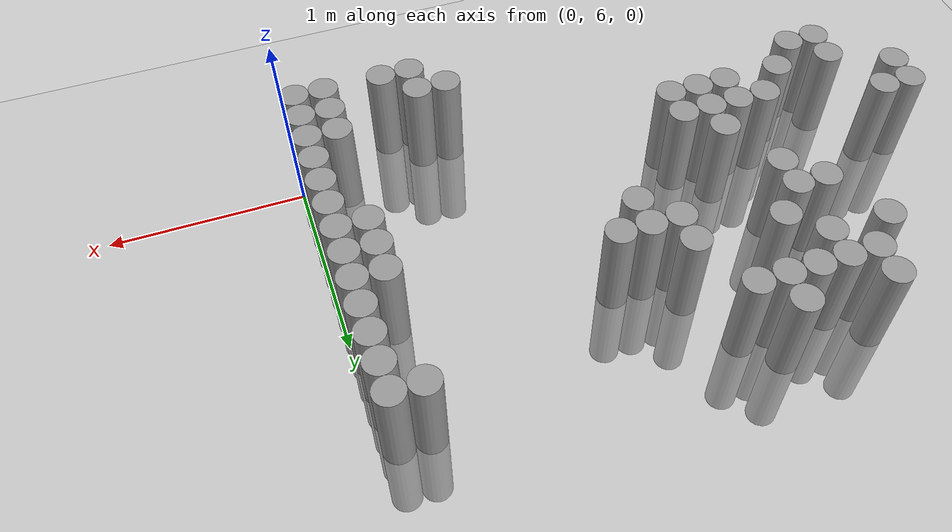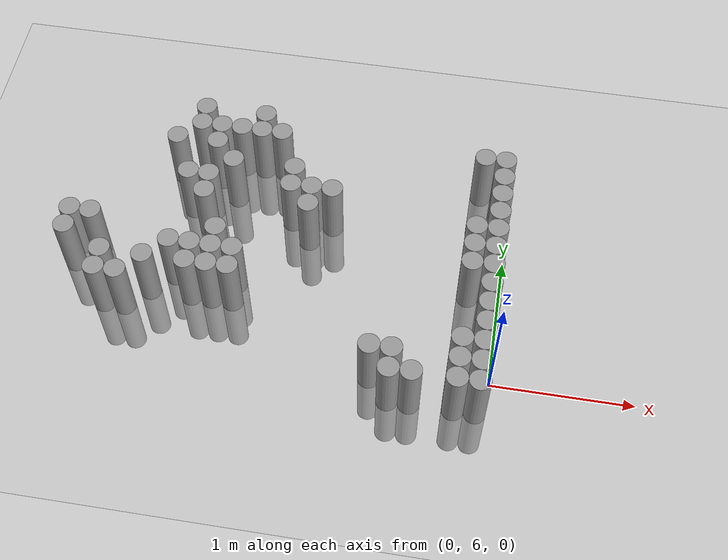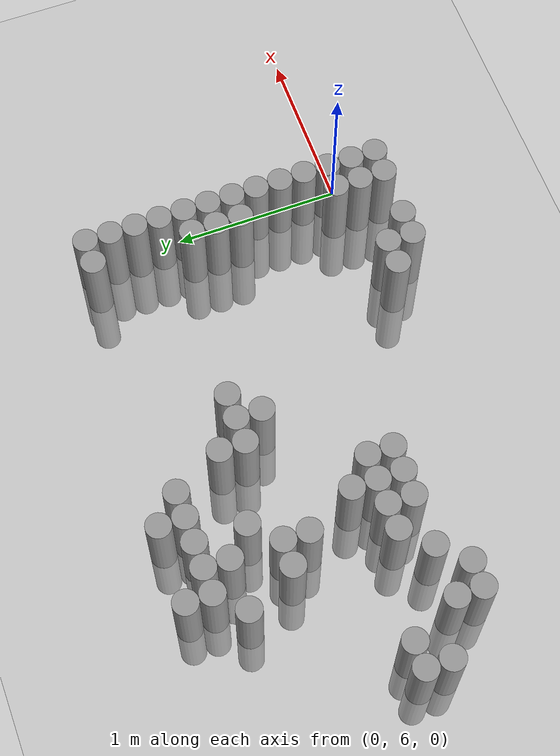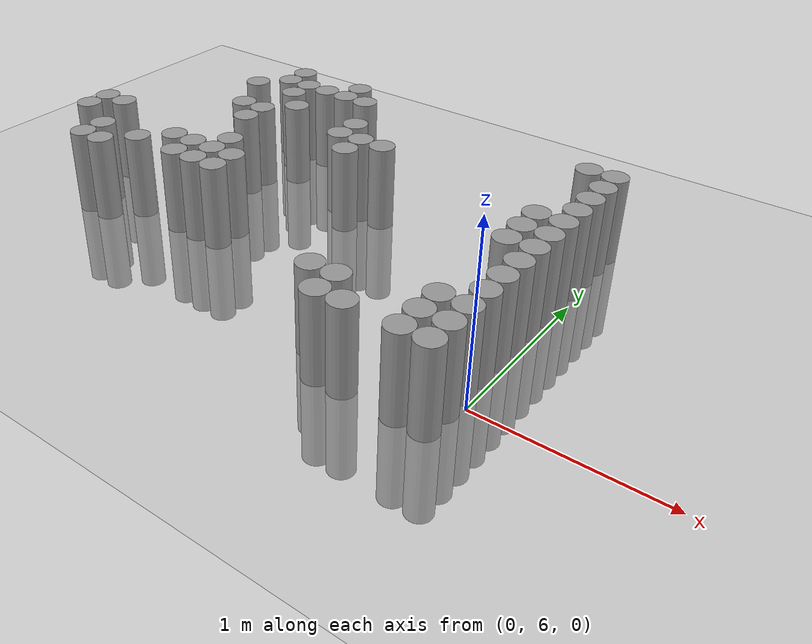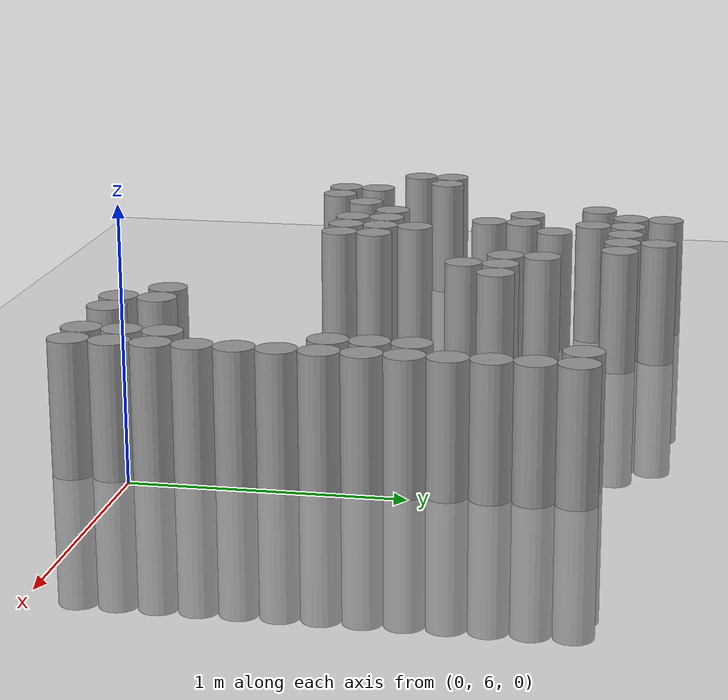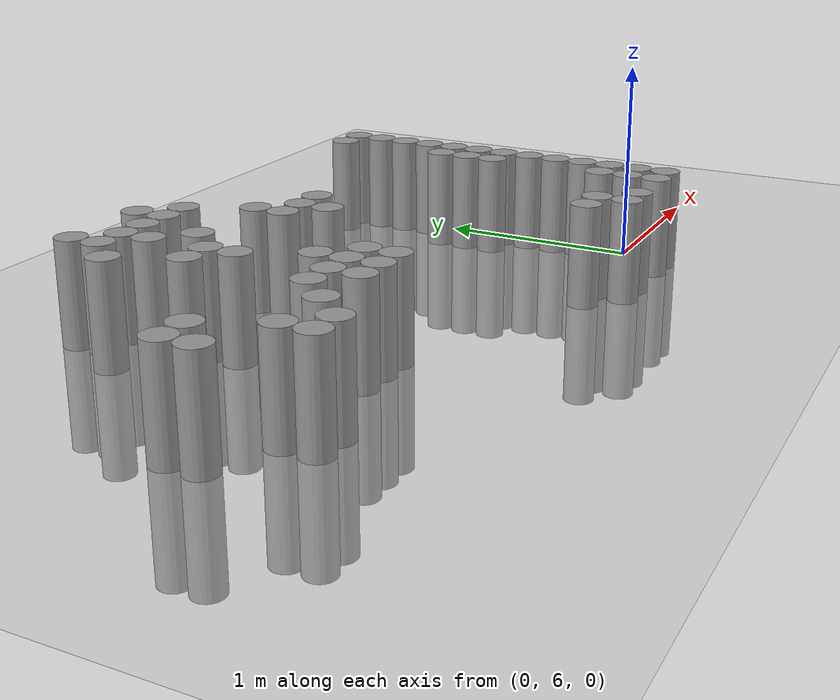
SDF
<sdf version="1.6">
 <world name="default">
  <model name="ground_plane">
   <static>1</static>
   <static>1</static>
   <link name="link">
    <collision name="collision">
     <geometry><plane><normal>0 0 1</normal><size>100 100</size></plane></geometry>
     <surface><friction><ode><mu>100</mu><mu2>50</mu2></ode></friction></surface>
    </collision>
    <visual name="visual">
     <cast_shadows>0</cast_shadows>
     <geometry><plane><normal>0 0 1</normal><size>100 100</size></plane></geometry>
     <material>
      <script><uri>file://media/materials/scripts/gazebo.material</uri><name>Gazebo/Grey</name></script>
     </material>
    </visual>
   </link>
  </model>
  <model name="unit_cylinder_169">
   <static>1</static>
   <pose>-3.075000 6.525000 0.000000 0.000000 0.000000 0.000000</pose>
   <link name="link">
    <inertial>
     <mass>1</mass>
     <inertia><ixx>0.145833</ixx><ixy>0</ixy><ixz>0</ixz><iyy>0.145833</iyy><iyz>0</iyz><izz>0.125</izz></inertia>
    </inertial>
    <collision name="collision">
     <geometry><cylinder><radius>0.075000</radius><length>1</length></cylinder></geometry>
    </collision>
    <visual name="visual">
     <geometry><cylinder><radius>0.075000</radius><length>1</length></cylinder></geometry>
     <material>
      <script><name>Gazebo/Grey</name><uri>file://media/materials/scripts/gazebo.material</uri></script>
     </material>
    </visual>
   </link>
  </model>
  <model name="unit_cylinder_170">
   <static>1</static>
   <pose>-3.075000 6.675000 0.000000 0.000000 0.000000 0.000000</pose>
   <link name="link">
    <inertial>
     <mass>1</mass>
     <inertia><ixx>0.145833</ixx><ixy>0</ixy><ixz>0</ixz><iyy>0.145833</iyy><iyz>0</iyz><izz>0.125</izz></inertia>
    </inertial>
    <collision name="collision">
     <geometry><cylinder><radius>0.075000</radius><length>1</length></cylinder></geometry>
    </collision>
    <visual name="visual">
     <geometry><cylinder><radius>0.075000</radius><length>1</length></cylinder></geometry>
     <material>
      <script><name>Gazebo/Grey</name><uri>file://media/materials/scripts/gazebo.material</uri></script>
     </material>
    </visual>
   </link>
  </model>
  <model name="unit_cylinder_171">
   <static>1</static>
   <pose>-2.925000 6.675000 0.000000 0.000000 0.000000 0.000000</pose>
   <link name="link">
    <inertial>
     <mass>1</mass>
     <inertia><ixx>0.145833</ixx><ixy>0</ixy><ixz>0</ixz><iyy>0.145833</iyy><iyz>0</iyz><izz>0.125</izz></inertia>
    </inertial>
    <collision name="collision">
     <geometry><cylinder><radius>0.075000</radius><length>1</length></cylinder></geometry>
    </collision>
    <visual name="visual">
     <geometry><cylinder><radius>0.075000</radius><length>1</length></cylinder></geometry>
     <material>
      <script><name>Gazebo/Grey</name><uri>file://media/materials/scripts/gazebo.material</uri></script>
     </material>
    </visual>
   </link>
  </model>
  <model name="unit_cylinder_173">
   <static>1</static>
   <pose>-2.775000 6.225000 0.000000 0.000000 0.000000 0.000000</pose>
   <link name="link">
    <inertial>
     <mass>1</mass>
     <inertia><ixx>0.145833</ixx><ixy>0</ixy><ixz>0</ixz><iyy>0.145833</iyy><iyz>0</iyz><izz>0.125</izz></inertia>
    </inertial>
    <collision name="collision">
     <geometry><cylinder><radius>0.075000</radius><length>1</length></cylinder></geometry>
    </collision>
    <visual name="visual">
     <geometry><cylinder><radius>0.075000</radius><length>1</length></cylinder></geometry>
     <material>
      <script><name>Gazebo/Grey</name><uri>file://media/materials/scripts/gazebo.material</uri></script>
     </material>
    </visual>
   </link>
  </model>
  <model name="unit_cylinder_174">
   <static>1</static>
   <pose>-2.775000 6.375000 0.000000 0.000000 0.000000 0.000000</pose>
   <link name="link">
    <inertial>
     <mass>1</mass>
     <inertia><ixx>0.145833</ixx><ixy>0</ixy><ixz>0</ixz><iyy>0.145833</iyy><iyz>0</iyz><izz>0.125</izz></inertia>
    </inertial>
    <collision name="collision">
     <geometry><cylinder><radius>0.075000</radius><length>1</length></cylinder></geometry>
    </collision>
    <visual name="visual">
     <geometry><cylinder><radius>0.075000</radius><length>1</length></cylinder></geometry>
     <material>
      <script><name>Gazebo/Grey</name><uri>file://media/materials/scripts/gazebo.material</uri></script>
     </material>
    </visual>
   </link>
  </model>
  <model name="unit_cylinder_179">
   <static>1</static>
   <pose>-2.625000 6.225000 0.000000 0.000000 0.000000 0.000000</pose>
   <link name="link">
    <inertial>
     <mass>1</mass>
     <inertia><ixx>0.145833</ixx><ixy>0</ixy><ixz>0</ixz><iyy>0.145833</iyy><iyz>0</iyz><izz>0.125</izz></inertia>
    </inertial>
    <collision name="collision">
     <geometry><cylinder><radius>0.075000</radius><length>1</length></cylinder></geometry>
    </collision>
    <visual name="visual">
     <geometry><cylinder><radius>0.075000</radius><length>1</length></cylinder></geometry>
     <material>
      <script><name>Gazebo/Grey</name><uri>file://media/materials/scripts/gazebo.material</uri></script>
     </material>
    </visual>
   </link>
  </model>
  <model name="unit_cylinder_183">
   <static>1</static>
   <pose>-2.475000 6.375000 0.000000 0.000000 0.000000 0.000000</pose>
   <link name="link">
    <inertial>
     <mass>1</mass>
     <inertia><ixx>0.145833</ixx><ixy>0</ixy><ixz>0</ixz><iyy>0.145833</iyy><iyz>0</iyz><izz>0.125</izz></inertia>
    </inertial>
    <collision name="collision">
     <geometry><cylinder><radius>0.075000</radius><length>1</length></cylinder></geometry>
    </collision>
    <visual name="visual">
     <geometry><cylinder><radius>0.075000</radius><length>1</length></cylinder></geometry>
     <material>
      <script><name>Gazebo/Grey</name><uri>file://media/materials/scripts/gazebo.material</uri></script>
     </material>
    </visual>
   </link>
  </model>
  <model name="unit_cylinder_184">
   <static>1</static>
   <pose>-2.475000 7.425000 0.000000 0.000000 0.000000 0.000000</pose>
   <link name="link">
    <inertial>
     <mass>1</mass>
     <inertia><ixx>0.145833</ixx><ixy>0</ixy><ixz>0</ixz><iyy>0.145833</iyy><iyz>0</iyz><izz>0.125</izz></inertia>
    </inertial>
    <collision name="collision">
     <geometry><cylinder><radius>0.075000</radius><length>1</length></cylinder></geometry>
    </collision>
    <visual name="visual">
     <geometry><cylinder><radius>0.075000</radius><length>1</length></cylinder></geometry>
     <material>
      <script><name>Gazebo/Grey</name><uri>file://media/materials/scripts/gazebo.material</uri></script>
     </material>
    </visual>
   </link>
  </model>
  <model name="unit_cylinder_189">
   <static>1</static>
   <pose>-2.325000 6.525000 0.000000 0.000000 0.000000 0.000000</pose>
   <link name="link">
    <inertial>
     <mass>1</mass>
     <inertia><ixx>0.145833</ixx><ixy>0</ixy><ixz>0</ixz><iyy>0.145833</iyy><iyz>0</iyz><izz>0.125</izz></inertia>
    </inertial>
    <collision name="collision">
     <geometry><cylinder><radius>0.075000</radius><length>1</length></cylinder></geometry>
    </collision>
    <visual name="visual">
     <geometry><cylinder><radius>0.075000</radius><length>1</length></cylinder></geometry>
     <material>
      <script><name>Gazebo/Grey</name><uri>file://media/materials/scripts/gazebo.material</uri></script>
     </material>
    </visual>
   </link>
  </model>
  <model name="unit_cylinder_190">
   <static>1</static>
   <pose>-2.325000 7.125000 0.000000 0.000000 0.000000 0.000000</pose>
   <link name="link">
    <inertial>
     <mass>1</mass>
     <inertia><ixx>0.145833</ixx><ixy>0</ixy><ixz>0</ixz><iyy>0.145833</iyy><iyz>0</iyz><izz>0.125</izz></inertia>
    </inertial>
    <collision name="collision">
     <geometry><cylinder><radius>0.075000</radius><length>1</length></cylinder></geometry>
    </collision>
    <visual name="visual">
     <geometry><cylinder><radius>0.075000</radius><length>1</length></cylinder></geometry>
     <material>
      <script><name>Gazebo/Grey</name><uri>file://media/materials/scripts/gazebo.material</uri></script>
     </material>
    </visual>
   </link>
  </model>
  <model name="unit_cylinder_191">
   <static>1</static>
   <pose>-2.325000 7.575000 0.000000 0.000000 0.000000 0.000000</pose>
   <link name="link">
    <inertial>
     <mass>1</mass>
     <inertia><ixx>0.145833</ixx><ixy>0</ixy><ixz>0</ixz><iyy>0.145833</iyy><iyz>0</iyz><izz>0.125</izz></inertia>
    </inertial>
    <collision name="collision">
     <geometry><cylinder><radius>0.075000</radius><length>1</length></cylinder></geometry>
    </collision>
    <visual name="visual">
     <geometry><cylinder><radius>0.075000</radius><length>1</length></cylinder></geometry>
     <material>
      <script><name>Gazebo/Grey</name><uri>file://media/materials/scripts/gazebo.material</uri></script>
     </material>
    </visual>
   </link>
  </model>
  <model name="unit_cylinder_192">
   <static>1</static>
   <pose>-2.325000 7.725000 0.000000 0.000000 0.000000 0.000000</pose>
   <link name="link">
    <inertial>
     <mass>1</mass>
     <inertia><ixx>0.145833</ixx><ixy>0</ixy><ixz>0</ixz><iyy>0.145833</iyy><iyz>0</iyz><izz>0.125</izz></inertia>
    </inertial>
    <collision name="collision">
     <geometry><cylinder><radius>0.075000</radius><length>1</length></cylinder></geometry>
    </collision>
    <visual name="visual">
     <geometry><cylinder><radius>0.075000</radius><length>1</length></cylinder></geometry>
     <material>
      <script><name>Gazebo/Grey</name><uri>file://media/materials/scripts/gazebo.material</uri></script>
     </material>
    </visual>
   </link>
  </model>
  <model name="unit_cylinder_196">
   <static>1</static>
   <pose>-2.175000 6.375000 0.000000 0.000000 0.000000 0.000000</pose>
   <link name="link">
    <inertial>
     <mass>1</mass>
     <inertia><ixx>0.145833</ixx><ixy>0</ixy><ixz>0</ixz><iyy>0.145833</iyy><iyz>0</iyz><izz>0.125</izz></inertia>
    </inertial>
    <collision name="collision">
     <geometry><cylinder><radius>0.075000</radius><length>1</length></cylinder></geometry>
    </collision>
    <visual name="visual">
     <geometry><cylinder><radius>0.075000</radius><length>1</length></cylinder></geometry>
     <material>
      <script><name>Gazebo/Grey</name><uri>file://media/materials/scripts/gazebo.material</uri></script>
     </material>
    </visual>
   </link>
  </model>
  <model name="unit_cylinder_197">
   <static>1</static>
   <pose>-2.175000 6.525000 0.000000 0.000000 0.000000 0.000000</pose>
   <link name="link">
    <inertial>
     <mass>1</mass>
     <inertia><ixx>0.145833</ixx><ixy>0</ixy><ixz>0</ixz><iyy>0.145833</iyy><iyz>0</iyz><izz>0.125</izz></inertia>
    </inertial>
    <collision name="collision">
     <geometry><cylinder><radius>0.075000</radius><length>1</length></cylinder></geometry>
    </collision>
    <visual name="visual">
     <geometry><cylinder><radius>0.075000</radius><length>1</length></cylinder></geometry>
     <material>
      <script><name>Gazebo/Grey</name><uri>file://media/materials/scripts/gazebo.material</uri></script>
     </material>
    </visual>
   </link>
  </model>
  <model name="unit_cylinder_198">
   <static>1</static>
   <pose>-2.175000 6.975000 0.000000 0.000000 0.000000 0.000000</pose>
   <link name="link">
    <inertial>
     <mass>1</mass>
     <inertia><ixx>0.145833</ixx><ixy>0</ixy><ixz>0</ixz><iyy>0.145833</iyy><iyz>0</iyz><izz>0.125</izz></inertia>
    </inertial>
    <collision name="collision">
     <geometry><cylinder><radius>0.075000</radius><length>1</length></cylinder></geometry>
    </collision>
    <visual name="visual">
     <geometry><cylinder><radius>0.075000</radius><length>1</length></cylinder></geometry>
     <material>
      <script><name>Gazebo/Grey</name><uri>file://media/materials/scripts/gazebo.material</uri></script>
     </material>
    </visual>
   </link>
  </model>
  <model name="unit_cylinder_199">
   <static>1</static>
   <pose>-2.175000 7.125000 0.000000 0.000000 0.000000 0.000000</pose>
   <link name="link">
    <inertial>
     <mass>1</mass>
     <inertia><ixx>0.145833</ixx><ixy>0</ixy><ixz>0</ixz><iyy>0.145833</iyy><iyz>0</iyz><izz>0.125</izz></inertia>
    </inertial>
    <collision name="collision">
     <geometry><cylinder><radius>0.075000</radius><length>1</length></cylinder></geometry>
    </collision>
    <visual name="visual">
     <geometry><cylinder><radius>0.075000</radius><length>1</length></cylinder></geometry>
     <material>
      <script><name>Gazebo/Grey</name><uri>file://media/materials/scripts/gazebo.material</uri></script>
     </material>
    </visual>
   </link>
  </model>
  <model name="unit_cylinder_200">
   <static>1</static>
   <pose>-2.175000 7.425000 0.000000 0.000000 0.000000 0.000000</pose>
   <link name="link">
    <inertial>
     <mass>1</mass>
     <inertia><ixx>0.145833</ixx><ixy>0</ixy><ixz>0</ixz><iyy>0.145833</iyy><iyz>0</iyz><izz>0.125</izz></inertia>
    </inertial>
    <collision name="collision">
     <geometry><cylinder><radius>0.075000</radius><length>1</length></cylinder></geometry>
    </collision>
    <visual name="visual">
     <geometry><cylinder><radius>0.075000</radius><length>1</length></cylinder></geometry>
     <material>
      <script><name>Gazebo/Grey</name><uri>file://media/materials/scripts/gazebo.material</uri></script>
     </material>
    </visual>
   </link>
  </model>
  <model name="unit_cylinder_201">
   <static>1</static>
   <pose>-2.175000 7.575000 0.000000 0.000000 0.000000 0.000000</pose>
   <link name="link">
    <inertial>
     <mass>1</mass>
     <inertia><ixx>0.145833</ixx><ixy>0</ixy><ixz>0</ixz><iyy>0.145833</iyy><iyz>0</iyz><izz>0.125</izz></inertia>
    </inertial>
    <collision name="collision">
     <geometry><cylinder><radius>0.075000</radius><length>1</length></cylinder></geometry>
    </collision>
    <visual name="visual">
     <geometry><cylinder><radius>0.075000</radius><length>1</length></cylinder></geometry>
     <material>
      <script><name>Gazebo/Grey</name><uri>file://media/materials/scripts/gazebo.material</uri></script>
     </material>
    </visual>
   </link>
  </model>
  <model name="unit_cylinder_203">
   <static>1</static>
   <pose>-2.025000 6.375000 0.000000 0.000000 0.000000 0.000000</pose>
   <link name="link">
    <inertial>
     <mass>1</mass>
     <inertia><ixx>0.145833</ixx><ixy>0</ixy><ixz>0</ixz><iyy>0.145833</iyy><iyz>0</iyz><izz>0.125</izz></inertia>
    </inertial>
    <collision name="collision">
     <geometry><cylinder><radius>0.075000</radius><length>1</length></cylinder></geometry>
    </collision>
    <visual name="visual">
     <geometry><cylinder><radius>0.075000</radius><length>1</length></cylinder></geometry>
     <material>
      <script><name>Gazebo/Grey</name><uri>file://media/materials/scripts/gazebo.material</uri></script>
     </material>
    </visual>
   </link>
  </model>
  <model name="unit_cylinder_204">
   <static>1</static>
   <pose>-2.025000 6.525000 0.000000 0.000000 0.000000 0.000000</pose>
   <link name="link">
    <inertial>
     <mass>1</mass>
     <inertia><ixx>0.145833</ixx><ixy>0</ixy><ixz>0</ixz><iyy>0.145833</iyy><iyz>0</iyz><izz>0.125</izz></inertia>
    </inertial>
    <collision name="collision">
     <geometry><cylinder><radius>0.075000</radius><length>1</length></cylinder></geometry>
    </collision>
    <visual name="visual">
     <geometry><cylinder><radius>0.075000</radius><length>1</length></cylinder></geometry>
     <material>
      <script><name>Gazebo/Grey</name><uri>file://media/materials/scripts/gazebo.material</uri></script>
     </material>
    </visual>
   </link>
  </model>
  <model name="unit_cylinder_205">
   <static>1</static>
   <pose>-2.025000 6.675000 0.000000 0.000000 0.000000 0.000000</pose>
   <link name="link">
    <inertial>
     <mass>1</mass>
     <inertia><ixx>0.145833</ixx><ixy>0</ixy><ixz>0</ixz><iyy>0.145833</iyy><iyz>0</iyz><izz>0.125</izz></inertia>
    </inertial>
    <collision name="collision">
     <geometry><cylinder><radius>0.075000</radius><length>1</length></cylinder></geometry>
    </collision>
    <visual name="visual">
     <geometry><cylinder><radius>0.075000</radius><length>1</length></cylinder></geometry>
     <material>
      <script><name>Gazebo/Grey</name><uri>file://media/materials/scripts/gazebo.material</uri></script>
     </material>
    </visual>
   </link>
  </model>
  <model name="unit_cylinder_206">
   <static>1</static>
   <pose>-2.025000 7.275000 0.000000 0.000000 0.000000 0.000000</pose>
   <link name="link">
    <inertial>
     <mass>1</mass>
     <inertia><ixx>0.145833</ixx><ixy>0</ixy><ixz>0</ixz><iyy>0.145833</iyy><iyz>0</iyz><izz>0.125</izz></inertia>
    </inertial>
    <collision name="collision">
     <geometry><cylinder><radius>0.075000</radius><length>1</length></cylinder></geometry>
    </collision>
    <visual name="visual">
     <geometry><cylinder><radius>0.075000</radius><length>1</length></cylinder></geometry>
     <material>
      <script><name>Gazebo/Grey</name><uri>file://media/materials/scripts/gazebo.material</uri></script>
     </material>
    </visual>
   </link>
  </model>
  <model name="unit_cylinder_207">
   <static>1</static>
   <pose>-2.025000 7.575000 0.000000 0.000000 0.000000 0.000000</pose>
   <link name="link">
    <inertial>
     <mass>1</mass>
     <inertia><ixx>0.145833</ixx><ixy>0</ixy><ixz>0</ixz><iyy>0.145833</iyy><iyz>0</iyz><izz>0.125</izz></inertia>
    </inertial>
    <collision name="collision">
     <geometry><cylinder><radius>0.075000</radius><length>1</length></cylinder></geometry>
    </collision>
    <visual name="visual">
     <geometry><cylinder><radius>0.075000</radius><length>1</length></cylinder></geometry>
     <material>
      <script><name>Gazebo/Grey</name><uri>file://media/materials/scripts/gazebo.material</uri></script>
     </material>
    </visual>
   </link>
  </model>
  <model name="unit_cylinder_209">
   <static>1</static>
   <pose>-1.875000 6.375000 0.000000 0.000000 0.000000 0.000000</pose>
   <link name="link">
    <inertial>
     <mass>1</mass>
     <inertia><ixx>0.145833</ixx><ixy>0</ixy><ixz>0</ixz><iyy>0.145833</iyy><iyz>0</iyz><izz>0.125</izz></inertia>
    </inertial>
    <collision name="collision">
     <geometry><cylinder><radius>0.075000</radius><length>1</length></cylinder></geometry>
    </collision>
    <visual name="visual">
     <geometry><cylinder><radius>0.075000</radius><length>1</length></cylinder></geometry>
     <material>
      <script><name>Gazebo/Grey</name><uri>file://media/materials/scripts/gazebo.material</uri></script>
     </material>
    </visual>
   </link>
  </model>
  <model name="unit_cylinder_210">
   <static>1</static>
   <pose>-1.875000 6.525000 0.000000 0.000000 0.000000 0.000000</pose>
   <link name="link">
    <inertial>
     <mass>1</mass>
     <inertia><ixx>0.145833</ixx><ixy>0</ixy><ixz>0</ixz><iyy>0.145833</iyy><iyz>0</iyz><izz>0.125</izz></inertia>
    </inertial>
    <collision name="collision">
     <geometry><cylinder><radius>0.075000</radius><length>1</length></cylinder></geometry>
    </collision>
    <visual name="visual">
     <geometry><cylinder><radius>0.075000</radius><length>1</length></cylinder></geometry>
     <material>
      <script><name>Gazebo/Grey</name><uri>file://media/materials/scripts/gazebo.material</uri></script>
     </material>
    </visual>
   </link>
  </model>
  <model name="unit_cylinder_211">
   <static>1</static>
   <pose>-1.875000 7.575000 0.000000 0.000000 0.000000 0.000000</pose>
   <link name="link">
    <inertial>
     <mass>1</mass>
     <inertia><ixx>0.145833</ixx><ixy>0</ixy><ixz>0</ixz><iyy>0.145833</iyy><iyz>0</iyz><izz>0.125</izz></inertia>
    </inertial>
    <collision name="collision">
     <geometry><cylinder><radius>0.075000</radius><length>1</length></cylinder></geometry>
    </collision>
    <visual name="visual">
     <geometry><cylinder><radius>0.075000</radius><length>1</length></cylinder></geometry>
     <material>
      <script><name>Gazebo/Grey</name><uri>file://media/materials/scripts/gazebo.material</uri></script>
     </material>
    </visual>
   </link>
  </model>
  <model name="unit_cylinder_212">
   <static>1</static>
   <pose>-1.875000 7.725000 0.000000 0.000000 0.000000 0.000000</pose>
   <link name="link">
    <inertial>
     <mass>1</mass>
     <inertia><ixx>0.145833</ixx><ixy>0</ixy><ixz>0</ixz><iyy>0.145833</iyy><iyz>0</iyz><izz>0.125</izz></inertia>
    </inertial>
    <collision name="collision">
     <geometry><cylinder><radius>0.075000</radius><length>1</length></cylinder></geometry>
    </collision>
    <visual name="visual">
     <geometry><cylinder><radius>0.075000</radius><length>1</length></cylinder></geometry>
     <material>
      <script><name>Gazebo/Grey</name><uri>file://media/materials/scripts/gazebo.material</uri></script>
     </material>
    </visual>
   </link>
  </model>
  <model name="unit_cylinder_217">
   <static>1</static>
   <pose>-1.725000 7.575000 0.000000 0.000000 0.000000 0.000000</pose>
   <link name="link">
    <inertial>
     <mass>1</mass>
     <inertia><ixx>0.145833</ixx><ixy>0</ixy><ixz>0</ixz><iyy>0.145833</iyy><iyz>0</iyz><izz>0.125</izz></inertia>
    </inertial>
    <collision name="collision">
     <geometry><cylinder><radius>0.075000</radius><length>1</length></cylinder></geometry>
    </collision>
    <visual name="visual">
     <geometry><cylinder><radius>0.075000</radius><length>1</length></cylinder></geometry>
     <material>
      <script><name>Gazebo/Grey</name><uri>file://media/materials/scripts/gazebo.material</uri></script>
     </material>
    </visual>
   </link>
  </model>
  <model name="unit_cylinder_223">
   <static>1</static>
   <pose>-1.575000 7.125000 0.000000 0.000000 0.000000 0.000000</pose>
   <link name="link">
    <inertial>
     <mass>1</mass>
     <inertia><ixx>0.145833</ixx><ixy>0</ixy><ixz>0</ixz><iyy>0.145833</iyy><iyz>0</iyz><izz>0.125</izz></inertia>
    </inertial>
    <collision name="collision">
     <geometry><cylinder><radius>0.075000</radius><length>1</length></cylinder></geometry>
    </collision>
    <visual name="visual">
     <geometry><cylinder><radius>0.075000</radius><length>1</length></cylinder></geometry>
     <material>
      <script><name>Gazebo/Grey</name><uri>file://media/materials/scripts/gazebo.material</uri></script>
     </material>
    </visual>
   </link>
  </model>
  <model name="unit_cylinder_224">
   <static>1</static>
   <pose>-1.575000 7.275000 0.000000 0.000000 0.000000 0.000000</pose>
   <link name="link">
    <inertial>
     <mass>1</mass>
     <inertia><ixx>0.145833</ixx><ixy>0</ixy><ixz>0</ixz><iyy>0.145833</iyy><iyz>0</iyz><izz>0.125</izz></inertia>
    </inertial>
    <collision name="collision">
     <geometry><cylinder><radius>0.075000</radius><length>1</length></cylinder></geometry>
    </collision>
    <visual name="visual">
     <geometry><cylinder><radius>0.075000</radius><length>1</length></cylinder></geometry>
     <material>
      <script><name>Gazebo/Grey</name><uri>file://media/materials/scripts/gazebo.material</uri></script>
     </material>
    </visual>
   </link>
  </model>
  <model name="unit_cylinder_227">
   <static>1</static>
   <pose>-1.425000 6.975000 0.000000 0.000000 0.000000 0.000000</pose>
   <link name="link">
    <inertial>
     <mass>1</mass>
     <inertia><ixx>0.145833</ixx><ixy>0</ixy><ixz>0</ixz><iyy>0.145833</iyy><iyz>0</iyz><izz>0.125</izz></inertia>
    </inertial>
    <collision name="collision">
     <geometry><cylinder><radius>0.075000</radius><length>1</length></cylinder></geometry>
    </collision>
    <visual name="visual">
     <geometry><cylinder><radius>0.075000</radius><length>1</length></cylinder></geometry>
     <material>
      <script><name>Gazebo/Grey</name><uri>file://media/materials/scripts/gazebo.material</uri></script>
     </material>
    </visual>
   </link>
  </model>
  <model name="unit_cylinder_228">
   <static>1</static>
   <pose>-1.425000 7.125000 0.000000 0.000000 0.000000 0.000000</pose>
   <link name="link">
    <inertial>
     <mass>1</mass>
     <inertia><ixx>0.145833</ixx><ixy>0</ixy><ixz>0</ixz><iyy>0.145833</iyy><iyz>0</iyz><izz>0.125</izz></inertia>
    </inertial>
    <collision name="collision">
     <geometry><cylinder><radius>0.075000</radius><length>1</length></cylinder></geometry>
    </collision>
    <visual name="visual">
     <geometry><cylinder><radius>0.075000</radius><length>1</length></cylinder></geometry>
     <material>
      <script><name>Gazebo/Grey</name><uri>file://media/materials/scripts/gazebo.material</uri></script>
     </material>
    </visual>
   </link>
  </model>
  <model name="unit_cylinder_230">
   <static>1</static>
   <pose>-1.275000 7.125000 0.000000 0.000000 0.000000 0.000000</pose>
   <link name="link">
    <inertial>
     <mass>1</mass>
     <inertia><ixx>0.145833</ixx><ixy>0</ixy><ixz>0</ixz><iyy>0.145833</iyy><iyz>0</iyz><izz>0.125</izz></inertia>
    </inertial>
    <collision name="collision">
     <geometry><cylinder><radius>0.075000</radius><length>1</length></cylinder></geometry>
    </collision>
    <visual name="visual">
     <geometry><cylinder><radius>0.075000</radius><length>1</length></cylinder></geometry>
     <material>
      <script><name>Gazebo/Grey</name><uri>file://media/materials/scripts/gazebo.material</uri></script>
     </material>
    </visual>
   </link>
  </model>
  <model name="unit_cylinder_231">
   <static>1</static>
   <pose>-0.825000 5.925000 0.000000 0.000000 0.000000 0.000000</pose>
   <link name="link">
    <inertial>
     <mass>1</mass>
     <inertia><ixx>0.145833</ixx><ixy>0</ixy><ixz>0</ixz><iyy>0.145833</iyy><iyz>0</iyz><izz>0.125</izz></inertia>
    </inertial>
    <collision name="collision">
     <geometry><cylinder><radius>0.075000</radius><length>1</length></cylinder></geometry>
    </collision>
    <visual name="visual">
     <geometry><cylinder><radius>0.075000</radius><length>1</length></cylinder></geometry>
     <material>
      <script><name>Gazebo/Grey</name><uri>file://media/materials/scripts/gazebo.material</uri></script>
     </material>
    </visual>
   </link>
  </model>
  <model name="unit_cylinder_233">
   <static>1</static>
   <pose>-0.675000 5.775000 0.000000 0.000000 0.000000 0.000000</pose>
   <link name="link">
    <inertial>
     <mass>1</mass>
     <inertia><ixx>0.145833</ixx><ixy>0</ixy><ixz>0</ixz><iyy>0.145833</iyy><iyz>0</iyz><izz>0.125</izz></inertia>
    </inertial>
    <collision name="collision">
     <geometry><cylinder><radius>0.075000</radius><length>1</length></cylinder></geometry>
    </collision>
    <visual name="visual">
     <geometry><cylinder><radius>0.075000</radius><length>1</length></cylinder></geometry>
     <material>
      <script><name>Gazebo/Grey</name><uri>file://media/materials/scripts/gazebo.material</uri></script>
     </material>
    </visual>
   </link>
  </model>
  <model name="unit_cylinder_234">
   <static>1</static>
   <pose>-0.675000 5.925000 0.000000 0.000000 0.000000 0.000000</pose>
   <link name="link">
    <inertial>
     <mass>1</mass>
     <inertia><ixx>0.145833</ixx><ixy>0</ixy><ixz>0</ixz><iyy>0.145833</iyy><iyz>0</iyz><izz>0.125</izz></inertia>
    </inertial>
    <collision name="collision">
     <geometry><cylinder><radius>0.075000</radius><length>1</length></cylinder></geometry>
    </collision>
    <visual name="visual">
     <geometry><cylinder><radius>0.075000</radius><length>1</length></cylinder></geometry>
     <material>
      <script><name>Gazebo/Grey</name><uri>file://media/materials/scripts/gazebo.material</uri></script>
     </material>
    </visual>
   </link>
  </model>
  <model name="unit_cylinder_236">
   <static>1</static>
   <pose>-0.525000 5.775000 0.000000 0.000000 0.000000 0.000000</pose>
   <link name="link">
    <inertial>
     <mass>1</mass>
     <inertia><ixx>0.145833</ixx><ixy>0</ixy><ixz>0</ixz><iyy>0.145833</iyy><iyz>0</iyz><izz>0.125</izz></inertia>
    </inertial>
    <collision name="collision">
     <geometry><cylinder><radius>0.075000</radius><length>1</length></cylinder></geometry>
    </collision>
    <visual name="visual">
     <geometry><cylinder><radius>0.075000</radius><length>1</length></cylinder></geometry>
     <material>
      <script><name>Gazebo/Grey</name><uri>file://media/materials/scripts/gazebo.material</uri></script>
     </material>
    </visual>
   </link>
  </model>
  <model name="unit_cylinder_242">
   <static>1</static>
   <pose>-0.225000 5.775000 0.000000 0.000000 0.000000 0.000000</pose>
   <link name="link">
    <inertial>
     <mass>1</mass>
     <inertia><ixx>0.145833</ixx><ixy>0</ixy><ixz>0</ixz><iyy>0.145833</iyy><iyz>0</iyz><izz>0.125</izz></inertia>
    </inertial>
    <collision name="collision">
     <geometry><cylinder><radius>0.075000</radius><length>1</length></cylinder></geometry>
    </collision>
    <visual name="visual">
     <geometry><cylinder><radius>0.075000</radius><length>1</length></cylinder></geometry>
     <material>
      <script><name>Gazebo/Grey</name><uri>file://media/materials/scripts/gazebo.material</uri></script>
     </material>
    </visual>
   </link>
  </model>
  <model name="unit_cylinder_243">
   <static>1</static>
   <pose>-0.225000 5.925000 0.000000 0.000000 0.000000 0.000000</pose>
   <link name="link">
    <inertial>
     <mass>1</mass>
     <inertia><ixx>0.145833</ixx><ixy>0</ixy><ixz>0</ixz><iyy>0.145833</iyy><iyz>0</iyz><izz>0.125</izz></inertia>
    </inertial>
    <collision name="collision">
     <geometry><cylinder><radius>0.075000</radius><length>1</length></cylinder></geometry>
    </collision>
    <visual name="visual">
     <geometry><cylinder><radius>0.075000</radius><length>1</length></cylinder></geometry>
     <material>
      <script><name>Gazebo/Grey</name><uri>file://media/materials/scripts/gazebo.material</uri></script>
     </material>
    </visual>
   </link>
  </model>
  <model name="unit_cylinder_244">
   <static>1</static>
   <pose>-0.225000 6.075000 0.000000 0.000000 0.000000 0.000000</pose>
   <link name="link">
    <inertial>
     <mass>1</mass>
     <inertia><ixx>0.145833</ixx><ixy>0</ixy><ixz>0</ixz><iyy>0.145833</iyy><iyz>0</iyz><izz>0.125</izz></inertia>
    </inertial>
    <collision name="collision">
     <geometry><cylinder><radius>0.075000</radius><length>1</length></cylinder></geometry>
    </collision>
    <visual name="visual">
     <geometry><cylinder><radius>0.075000</radius><length>1</length></cylinder></geometry>
     <material>
      <script><name>Gazebo/Grey</name><uri>file://media/materials/scripts/gazebo.material</uri></script>
     </material>
    </visual>
   </link>
  </model>
  <model name="unit_cylinder_245">
   <static>1</static>
   <pose>-0.225000 6.675000 0.000000 0.000000 0.000000 0.000000</pose>
   <link name="link">
    <inertial>
     <mass>1</mass>
     <inertia><ixx>0.145833</ixx><ixy>0</ixy><ixz>0</ixz><iyy>0.145833</iyy><iyz>0</iyz><izz>0.125</izz></inertia>
    </inertial>
    <collision name="collision">
     <geometry><cylinder><radius>0.075000</radius><length>1</length></cylinder></geometry>
    </collision>
    <visual name="visual">
     <geometry><cylinder><radius>0.075000</radius><length>1</length></cylinder></geometry>
     <material>
      <script><name>Gazebo/Grey</name><uri>file://media/materials/scripts/gazebo.material</uri></script>
     </material>
    </visual>
   </link>
  </model>
  <model name="unit_cylinder_246">
   <static>1</static>
   <pose>-0.225000 6.825000 0.000000 0.000000 0.000000 0.000000</pose>
   <link name="link">
    <inertial>
     <mass>1</mass>
     <inertia><ixx>0.145833</ixx><ixy>0</ixy><ixz>0</ixz><iyy>0.145833</iyy><iyz>0</iyz><izz>0.125</izz></inertia>
    </inertial>
    <collision name="collision">
     <geometry><cylinder><radius>0.075000</radius><length>1</length></cylinder></geometry>
    </collision>
    <visual name="visual">
     <geometry><cylinder><radius>0.075000</radius><length>1</length></cylinder></geometry>
     <material>
      <script><name>Gazebo/Grey</name><uri>file://media/materials/scripts/gazebo.material</uri></script>
     </material>
    </visual>
   </link>
  </model>
  <model name="unit_cylinder_247">
   <static>1</static>
   <pose>-0.225000 6.975000 0.000000 0.000000 0.000000 0.000000</pose>
   <link name="link">
    <inertial>
     <mass>1</mass>
     <inertia><ixx>0.145833</ixx><ixy>0</ixy><ixz>0</ixz><iyy>0.145833</iyy><iyz>0</iyz><izz>0.125</izz></inertia>
    </inertial>
    <collision name="collision">
     <geometry><cylinder><radius>0.075000</radius><length>1</length></cylinder></geometry>
    </collision>
    <visual name="visual">
     <geometry><cylinder><radius>0.075000</radius><length>1</length></cylinder></geometry>
     <material>
      <script><name>Gazebo/Grey</name><uri>file://media/materials/scripts/gazebo.material</uri></script>
     </material>
    </visual>
   </link>
  </model>
  <model name="unit_cylinder_248">
   <static>1</static>
   <pose>-0.225000 7.575000 0.000000 0.000000 0.000000 0.000000</pose>
   <link name="link">
    <inertial>
     <mass>1</mass>
     <inertia><ixx>0.145833</ixx><ixy>0</ixy><ixz>0</ixz><iyy>0.145833</iyy><iyz>0</iyz><izz>0.125</izz></inertia>
    </inertial>
    <collision name="collision">
     <geometry><cylinder><radius>0.075000</radius><length>1</length></cylinder></geometry>
    </collision>
    <visual name="visual">
     <geometry><cylinder><radius>0.075000</radius><length>1</length></cylinder></geometry>
     <material>
      <script><name>Gazebo/Grey</name><uri>file://media/materials/scripts/gazebo.material</uri></script>
     </material>
    </visual>
   </link>
  </model>
  <model name="unit_cylinder_261">
   <static>1</static>
   <pose>-0.075000 5.775000 0.000000 0.000000 0.000000 0.000000</pose>
   <link name="link">
    <inertial>
     <mass>1</mass>
     <inertia><ixx>0.145833</ixx><ixy>0</ixy><ixz>0</ixz><iyy>0.145833</iyy><iyz>0</iyz><izz>0.125</izz></inertia>
    </inertial>
    <collision name="collision">
     <geometry><cylinder><radius>0.075000</radius><length>1</length></cylinder></geometry>
    </collision>
    <visual name="visual">
     <geometry><cylinder><radius>0.075000</radius><length>1</length></cylinder></geometry>
     <material>
      <script><name>Gazebo/Grey</name><uri>file://media/materials/scripts/gazebo.material</uri></script>
     </material>
    </visual>
   </link>
  </model>
  <model name="unit_cylinder_262">
   <static>1</static>
   <pose>-0.075000 5.925000 0.000000 0.000000 0.000000 0.000000</pose>
   <link name="link">
    <inertial>
     <mass>1</mass>
     <inertia><ixx>0.145833</ixx><ixy>0</ixy><ixz>0</ixz><iyy>0.145833</iyy><iyz>0</iyz><izz>0.125</izz></inertia>
    </inertial>
    <collision name="collision">
     <geometry><cylinder><radius>0.075000</radius><length>1</length></cylinder></geometry>
    </collision>
    <visual name="visual">
     <geometry><cylinder><radius>0.075000</radius><length>1</length></cylinder></geometry>
     <material>
      <script><name>Gazebo/Grey</name><uri>file://media/materials/scripts/gazebo.material</uri></script>
     </material>
    </visual>
   </link>
  </model>
  <model name="unit_cylinder_263">
   <static>1</static>
   <pose>-0.075000 6.075000 0.000000 0.000000 0.000000 0.000000</pose>
   <link name="link">
    <inertial>
     <mass>1</mass>
     <inertia><ixx>0.145833</ixx><ixy>0</ixy><ixz>0</ixz><iyy>0.145833</iyy><iyz>0</iyz><izz>0.125</izz></inertia>
    </inertial>
    <collision name="collision">
     <geometry><cylinder><radius>0.075000</radius><length>1</length></cylinder></geometry>
    </collision>
    <visual name="visual">
     <geometry><cylinder><radius>0.075000</radius><length>1</length></cylinder></geometry>
     <material>
      <script><name>Gazebo/Grey</name><uri>file://media/materials/scripts/gazebo.material</uri></script>
     </material>
    </visual>
   </link>
  </model>
  <model name="unit_cylinder_264">
   <static>1</static>
   <pose>-0.075000 6.225000 0.000000 0.000000 0.000000 0.000000</pose>
   <link name="link">
    <inertial>
     <mass>1</mass>
     <inertia><ixx>0.145833</ixx><ixy>0</ixy><ixz>0</ixz><iyy>0.145833</iyy><iyz>0</iyz><izz>0.125</izz></inertia>
    </inertial>
    <collision name="collision">
     <geometry><cylinder><radius>0.075000</radius><length>1</length></cylinder></geometry>
    </collision>
    <visual name="visual">
     <geometry><cylinder><radius>0.075000</radius><length>1</length></cylinder></geometry>
     <material>
      <script><name>Gazebo/Grey</name><uri>file://media/materials/scripts/gazebo.material</uri></script>
     </material>
    </visual>
   </link>
  </model>
  <model name="unit_cylinder_265">
   <static>1</static>
   <pose>-0.075000 6.375000 0.000000 0.000000 0.000000 0.000000</pose>
   <link name="link">
    <inertial>
     <mass>1</mass>
     <inertia><ixx>0.145833</ixx><ixy>0</ixy><ixz>0</ixz><iyy>0.145833</iyy><iyz>0</iyz><izz>0.125</izz></inertia>
    </inertial>
    <collision name="collision">
     <geometry><cylinder><radius>0.075000</radius><length>1</length></cylinder></geometry>
    </collision>
    <visual name="visual">
     <geometry><cylinder><radius>0.075000</radius><length>1</length></cylinder></geometry>
     <material>
      <script><name>Gazebo/Grey</name><uri>file://media/materials/scripts/gazebo.material</uri></script>
     </material>
    </visual>
   </link>
  </model>
  <model name="unit_cylinder_266">
   <static>1</static>
   <pose>-0.075000 6.525000 0.000000 0.000000 0.000000 0.000000</pose>
   <link name="link">
    <inertial>
     <mass>1</mass>
     <inertia><ixx>0.145833</ixx><ixy>0</ixy><ixz>0</ixz><iyy>0.145833</iyy><iyz>0</iyz><izz>0.125</izz></inertia>
    </inertial>
    <collision name="collision">
     <geometry><cylinder><radius>0.075000</radius><length>1</length></cylinder></geometry>
    </collision>
    <visual name="visual">
     <geometry><cylinder><radius>0.075000</radius><length>1</length></cylinder></geometry>
     <material>
      <script><name>Gazebo/Grey</name><uri>file://media/materials/scripts/gazebo.material</uri></script>
     </material>
    </visual>
   </link>
  </model>
  <model name="unit_cylinder_267">
   <static>1</static>
   <pose>-0.075000 6.675000 0.000000 0.000000 0.000000 0.000000</pose>
   <link name="link">
    <inertial>
     <mass>1</mass>
     <inertia><ixx>0.145833</ixx><ixy>0</ixy><ixz>0</ixz><iyy>0.145833</iyy><iyz>0</iyz><izz>0.125</izz></inertia>
    </inertial>
    <collision name="collision">
     <geometry><cylinder><radius>0.075000</radius><length>1</length></cylinder></geometry>
    </collision>
    <visual name="visual">
     <geometry><cylinder><radius>0.075000</radius><length>1</length></cylinder></geometry>
     <material>
      <script><name>Gazebo/Grey</name><uri>file://media/materials/scripts/gazebo.material</uri></script>
     </material>
    </visual>
   </link>
  </model>
  <model name="unit_cylinder_268">
   <static>1</static>
   <pose>-0.075000 6.825000 0.000000 0.000000 0.000000 0.000000</pose>
   <link name="link">
    <inertial>
     <mass>1</mass>
     <inertia><ixx>0.145833</ixx><ixy>0</ixy><ixz>0</ixz><iyy>0.145833</iyy><iyz>0</iyz><izz>0.125</izz></inertia>
    </inertial>
    <collision name="collision">
     <geometry><cylinder><radius>0.075000</radius><length>1</length></cylinder></geometry>
    </collision>
    <visual name="visual">
     <geometry><cylinder><radius>0.075000</radius><length>1</length></cylinder></geometry>
     <material>
      <script><name>Gazebo/Grey</name><uri>file://media/materials/scripts/gazebo.material</uri></script>
     </material>
    </visual>
   </link>
  </model>
  <model name="unit_cylinder_269">
   <static>1</static>
   <pose>-0.075000 6.975000 0.000000 0.000000 0.000000 0.000000</pose>
   <link name="link">
    <inertial>
     <mass>1</mass>
     <inertia><ixx>0.145833</ixx><ixy>0</ixy><ixz>0</ixz><iyy>0.145833</iyy><iyz>0</iyz><izz>0.125</izz></inertia>
    </inertial>
    <collision name="collision">
     <geometry><cylinder><radius>0.075000</radius><length>1</length></cylinder></geometry>
    </collision>
    <visual name="visual">
     <geometry><cylinder><radius>0.075000</radius><length>1</length></cylinder></geometry>
     <material>
      <script><name>Gazebo/Grey</name><uri>file://media/materials/scripts/gazebo.material</uri></script>
     </material>
    </visual>
   </link>
  </model>
  <model name="unit_cylinder_270">
   <static>1</static>
   <pose>-0.075000 7.125000 0.000000 0.000000 0.000000 0.000000</pose>
   <link name="link">
    <inertial>
     <mass>1</mass>
     <inertia><ixx>0.145833</ixx><ixy>0</ixy><ixz>0</ixz><iyy>0.145833</iyy><iyz>0</iyz><izz>0.125</izz></inertia>
    </inertial>
    <collision name="collision">
     <geometry><cylinder><radius>0.075000</radius><length>1</length></cylinder></geometry>
    </collision>
    <visual name="visual">
     <geometry><cylinder><radius>0.075000</radius><length>1</length></cylinder></geometry>
     <material>
      <script><name>Gazebo/Grey</name><uri>file://media/materials/scripts/gazebo.material</uri></script>
     </material>
    </visual>
   </link>
  </model>
  <model name="unit_cylinder_271">
   <static>1</static>
   <pose>-0.075000 7.275000 0.000000 0.000000 0.000000 0.000000</pose>
   <link name="link">
    <inertial>
     <mass>1</mass>
     <inertia><ixx>0.145833</ixx><ixy>0</ixy><ixz>0</ixz><iyy>0.145833</iyy><iyz>0</iyz><izz>0.125</izz></inertia>
    </inertial>
    <collision name="collision">
     <geometry><cylinder><radius>0.075000</radius><length>1</length></cylinder></geometry>
    </collision>
    <visual name="visual">
     <geometry><cylinder><radius>0.075000</radius><length>1</length></cylinder></geometry>
     <material>
      <script><name>Gazebo/Grey</name><uri>file://media/materials/scripts/gazebo.material</uri></script>
     </material>
    </visual>
   </link>
  </model>
  <model name="unit_cylinder_272">
   <static>1</static>
   <pose>-0.075000 7.425000 0.000000 0.000000 0.000000 0.000000</pose>
   <link name="link">
    <inertial>
     <mass>1</mass>
     <inertia><ixx>0.145833</ixx><ixy>0</ixy><ixz>0</ixz><iyy>0.145833</iyy><iyz>0</iyz><izz>0.125</izz></inertia>
    </inertial>
    <collision name="collision">
     <geometry><cylinder><radius>0.075000</radius><length>1</length></cylinder></geometry>
    </collision>
    <visual name="visual">
     <geometry><cylinder><radius>0.075000</radius><length>1</length></cylinder></geometry>
     <material>
      <script><name>Gazebo/Grey</name><uri>file://media/materials/scripts/gazebo.material</uri></script>
     </material>
    </visual>
   </link>
  </model>
  <model name="unit_cylinder_273">
   <static>1</static>
   <pose>-0.075000 7.575000 0.000000 0.000000 0.000000 0.000000</pose>
   <link name="link">
    <inertial>
     <mass>1</mass>
     <inertia><ixx>0.145833</ixx><ixy>0</ixy><ixz>0</ixz><iyy>0.145833</iyy><iyz>0</iyz><izz>0.125</izz></inertia>
    </inertial>
    <collision name="collision">
     <geometry><cylinder><radius>0.075000</radius><length>1</length></cylinder></geometry>
    </collision>
    <visual name="visual">
     <geometry><cylinder><radius>0.075000</radius><length>1</length></cylinder></geometry>
     <material>
      <script><name>Gazebo/Grey</name><uri>file://media/materials/scripts/gazebo.material</uri></script>
     </material>
    </visual>
   </link>
  </model>
 </world>
</sdf>
